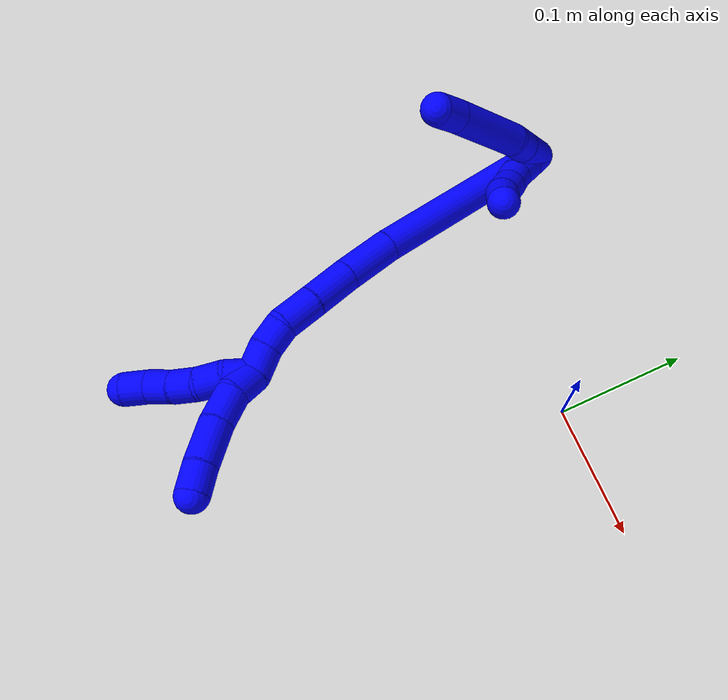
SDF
<sdf version="1.7">
 <world name="default">
  <model name="photoneo_s_sensor">
   <static>1</static>
   <pose>0 0 2 1.57079 1.57079 3.14159</pose>
   <link name="link">
    <inertial><mass>0.1</mass></inertial>
    <sensor name="sensor" type="depth">
     <update_rate>30</update_rate>
     <camera>
      <horizontal_fov>1.22</horizontal_fov>
      <image><width>1920</width><height>1200</height><format>B8G8R8</format></image>
      <clip><near>0.1</near><far>4</far></clip>
      <depth_camera><output>points</output></depth_camera>
     </camera>
     <plugin name="camera_plugin" filename="libgazebo_ros_depth_camera.so">
      <baseline>0.2</baseline>
      <alwaysOn>1</alwaysOn>
      <updateRate>0.0</updateRate>
      <cameraName>camera_ir</cameraName>
      <imageTopicName>/camera/color/image_raw</imageTopicName>
      <cameraInfoTopicName>/camera/color/camera_info</cameraInfoTopicName>
      <depthImageTopicName>/camera/depth/image_raw</depthImageTopicName>
      <depthImageCameraInfoTopicName>/camera/depth/camera_info</depthImageCameraInfoTopicName>
      <pointCloudTopicName>/camera/depth/points</pointCloudTopicName>
      <frameName>fr_optical</frameName>
      <pointCloudCutoff>0.1</pointCloudCutoff>
      <pointCloudCutoffMax>2.0</pointCloudCutoffMax>
      <distortionK1>0</distortionK1>
      <distortionK2>0</distortionK2>
      <distortionK3>0</distortionK3>
      <distortionT1>0</distortionT1>
      <distortionT2>0</distortionT2>
      <CxPrime>0</CxPrime>
      <Cx>0</Cx>
      <Cy>0</Cy>
      <focalLength>0</focalLength>
      <hackBaseline>0</hackBaseline>
     </plugin>
    </sensor>
   </link>
  </model>
  <model name="bin">
   <static>1</static>
   <link name="bottom">
    <collision name="collision-bottom">
     <pose>0 0 -0.01 0 -0 0</pose>
     <geometry><box><size>0.8 0.6 0.02</size></box></geometry>
     <surface>
      <friction><ode><mu>100</mu><mu2>100</mu2></ode></friction>
      <contact><collide_bitmask>65535</collide_bitmask></contact>
     </surface>
    </collision>
   </link>
   <link name="west_wall">
    <collision name="collision-west_wall">
     <pose>-0.41 0 0.1 0 -0 0</pose>
     <geometry><box><size>0.02 0.6 0.2</size></box></geometry>
     <surface>
      <friction><ode><mu>100</mu><mu2>100</mu2></ode></friction>
      <contact><collide_bitmask>65535</collide_bitmask></contact>
     </surface>
    </collision>
   </link>
   <link name="east_wall">
    <collision name="collision-east_wall">
     <pose>0.41 0 0.1 0 -0 0</pose>
     <geometry><box><size>0.02 0.6 0.2</size></box></geometry>
     <surface>
      <friction><ode><mu>100</mu><mu2>100</mu2></ode></friction>
      <contact><collide_bitmask>65535</collide_bitmask></contact>
     </surface>
    </collision>
   </link>
   <link name="south_wall">
    <collision name="collision-south_wall">
     <pose>0 -0.31 0.1 0 -0 0</pose>
     <geometry><box><size>0.8 0.02 0.2</size></box></geometry>
     <surface>
      <friction><ode><mu>100</mu><mu2>100</mu2></ode></friction>
      <contact><collide_bitmask>65535</collide_bitmask></contact>
     </surface>
    </collision>
   </link>
   <link name="north_wall">
    <collision name="collision-north_wall">
     <pose>0 0.31 0.1 0 -0 0</pose>
     <geometry><box><size>0.8 0.02 0.2</size></box></geometry>
     <surface>
      <friction><ode><mu>100</mu><mu2>100</mu2></ode></friction>
      <contact><collide_bitmask>65535</collide_bitmask></contact>
     </surface>
    </collision>
   </link>
  </model>
  <model name="1">
   <static>0</static>
   <link name="1">
    <collision name="collision-cylinder-e_1_2_8">
     <pose>0.005212 0.000737 -0.021674 -3.1076 0.235873 -2.85663</pose>
     <geometry><cylinder><radius>0.0125</radius><length>0.044609</length></cylinder></geometry>
     <surface>
      <friction><ode><mu>1.16</mu><mu2>1.16</mu2><slip1>0</slip1><slip2>0</slip2></ode></friction>
      <contact><ode><kp>1e+06</kp><kd>1</kd><max_vel>0</max_vel><min_depth>0.001</min_depth></ode></contact>
     </surface>
    </collision>
    <visual name="visual-cylinder-e_1_2_8">
     <pose>0.005212 0.000737 -0.021674 -3.1076 0.235873 -2.85663</pose>
     <geometry><cylinder><radius>0.0125</radius><length>0.044609</length></cylinder></geometry>
     <material><ambient>0 0 1 1</ambient></material>
    </visual>
    <collision name="collision-cylinder-e_2_8_9">
     <pose>0.013745 0.002618 -0.052989 -3.0235 0.329599 -2.45853</pose>
     <geometry><cylinder><radius>0.0125</radius><length>0.02052</length></cylinder></geometry>
     <surface>
      <friction><ode><mu>1.16</mu><mu2>1.16</mu2><slip1>0</slip1><slip2>0</slip2></ode></friction>
      <contact><ode><kp>1e+06</kp><kd>1</kd><max_vel>0</max_vel><min_depth>0.001</min_depth></ode></contact>
     </surface>
    </collision>
    <visual name="visual-cylinder-e_2_8_9">
     <pose>0.013745 0.002618 -0.052989 -3.0235 0.329599 -2.45853</pose>
     <geometry><cylinder><radius>0.0125</radius><length>0.02052</length></cylinder></geometry>
     <material><ambient>0 0 1 1</ambient></material>
    </visual>
    <collision name="collision-cylinder-e_3_9_10">
     <pose>0.035737 0.009478 -0.088163 -2.92136 0.619756 -2.47662</pose>
     <geometry><cylinder><radius>0.0125</radius><length>0.064289</length></cylinder></geometry>
     <surface>
      <friction><ode><mu>1.16</mu><mu2>1.16</mu2><slip1>0</slip1><slip2>0</slip2></ode></friction>
      <contact><ode><kp>1e+06</kp><kd>1</kd><max_vel>0</max_vel><min_depth>0.001</min_depth></ode></contact>
     </surface>
    </collision>
    <visual name="visual-cylinder-e_3_9_10">
     <pose>0.035737 0.009478 -0.088163 -2.92136 0.619756 -2.47662</pose>
     <geometry><cylinder><radius>0.0125</radius><length>0.064289</length></cylinder></geometry>
     <material><ambient>0 0 1 1</ambient></material>
    </visual>
    <collision name="collision-cylinder-e_4_10_6">
     <pose>0.0602 0.016362 -0.122123 -3.00387 0.597786 -2.70117</pose>
     <geometry><cylinder><radius>0.0125</radius><length>0.020582</length></cylinder></geometry>
     <surface>
      <friction><ode><mu>1.16</mu><mu2>1.16</mu2><slip1>0</slip1><slip2>0</slip2></ode></friction>
      <contact><ode><kp>1e+06</kp><kd>1</kd><max_vel>0</max_vel><min_depth>0.001</min_depth></ode></contact>
     </surface>
    </collision>
    <visual name="visual-cylinder-e_4_10_6">
     <pose>0.0602 0.016362 -0.122123 -3.00387 0.597786 -2.70117</pose>
     <geometry><cylinder><radius>0.0125</radius><length>0.020582</length></cylinder></geometry>
     <material><ambient>0 0 1 1</ambient></material>
    </visual>
    <collision name="collision-cylinder-e_1_2_11">
     <pose>0.004333 -0.004591 -0.007755 2.6071 0.448185 1.38843</pose>
     <geometry><cylinder><radius>0.0125</radius><length>0.02</length></cylinder></geometry>
     <surface>
      <friction><ode><mu>1.16</mu><mu2>1.16</mu2><slip1>0</slip1><slip2>0</slip2></ode></friction>
      <contact><ode><kp>1e+06</kp><kd>1</kd><max_vel>0</max_vel><min_depth>0.001</min_depth></ode></contact>
     </surface>
    </collision>
    <visual name="visual-cylinder-e_1_2_11">
     <pose>0.004333 -0.004591 -0.007755 2.6071 0.448185 1.38843</pose>
     <geometry><cylinder><radius>0.0125</radius><length>0.02</length></cylinder></geometry>
     <material><ambient>0 0 1 1</ambient></material>
    </visual>
    <collision name="collision-cylinder-e_2_11_12">
     <pose>0.013136 -0.013777 -0.023186 2.60211 0.463328 1.41272</pose>
     <geometry><cylinder><radius>0.0125</radius><length>0.02</length></cylinder></geometry>
     <surface>
      <friction><ode><mu>1.16</mu><mu2>1.16</mu2><slip1>0</slip1><slip2>0</slip2></ode></friction>
      <contact><ode><kp>1e+06</kp><kd>1</kd><max_vel>0</max_vel><min_depth>0.001</min_depth></ode></contact>
     </surface>
    </collision>
    <visual name="visual-cylinder-e_2_11_12">
     <pose>0.013136 -0.013777 -0.023186 2.60211 0.463328 1.41272</pose>
     <geometry><cylinder><radius>0.0125</radius><length>0.02</length></cylinder></geometry>
     <material><ambient>0 0 1 1</ambient></material>
    </visual>
    <collision name="collision-cylinder-e_3_12_13">
     <pose>0.01994 -0.023313 -0.039236 2.60868 0.235678 0.818495</pose>
     <geometry><cylinder><radius>0.0125</radius><length>0.02</length></cylinder></geometry>
     <surface>
      <friction><ode><mu>1.16</mu><mu2>1.16</mu2><slip1>0</slip1><slip2>0</slip2></ode></friction>
      <contact><ode><kp>1e+06</kp><kd>1</kd><max_vel>0</max_vel><min_depth>0.001</min_depth></ode></contact>
     </surface>
    </collision>
    <visual name="visual-cylinder-e_3_12_13">
     <pose>0.01994 -0.023313 -0.039236 2.60868 0.235678 0.818495</pose>
     <geometry><cylinder><radius>0.0125</radius><length>0.02</length></cylinder></geometry>
     <material><ambient>0 0 1 1</ambient></material>
    </visual>
    <collision name="collision-cylinder-e_4_13_14">
     <pose>0.024799 -0.032339 -0.056383 2.7056 0.255095 1.04957</pose>
     <geometry><cylinder><radius>0.0125</radius><length>0.02</length></cylinder></geometry>
     <surface>
      <friction><ode><mu>1.16</mu><mu2>1.16</mu2><slip1>0</slip1><slip2>0</slip2></ode></friction>
      <contact><ode><kp>1e+06</kp><kd>1</kd><max_vel>0</max_vel><min_depth>0.001</min_depth></ode></contact>
     </surface>
    </collision>
    <visual name="visual-cylinder-e_4_13_14">
     <pose>0.024799 -0.032339 -0.056383 2.7056 0.255095 1.04957</pose>
     <geometry><cylinder><radius>0.0125</radius><length>0.02</length></cylinder></geometry>
     <material><ambient>0 0 1 1</ambient></material>
    </visual>
    <collision name="collision-cylinder-e_5_14_5">
     <pose>0.026613 -0.040813 -0.074112 2.68615 -0.070971 -0.304018</pose>
     <geometry><cylinder><radius>0.0125</radius><length>0.02</length></cylinder></geometry>
     <surface>
      <friction><ode><mu>1.16</mu><mu2>1.16</mu2><slip1>0</slip1><slip2>0</slip2></ode></friction>
      <contact><ode><kp>1e+06</kp><kd>1</kd><max_vel>0</max_vel><min_depth>0.001</min_depth></ode></contact>
     </surface>
    </collision>
    <visual name="visual-cylinder-e_5_14_5">
     <pose>0.026613 -0.040813 -0.074112 2.68615 -0.070971 -0.304018</pose>
     <geometry><cylinder><radius>0.0125</radius><length>0.02</length></cylinder></geometry>
     <material><ambient>0 0 1 1</ambient></material>
    </visual>
    <collision name="collision-cylinder-e_1_2_15">
     <pose>0.057586 -0.035045 -0.036986 2.38315 0.846446 1.69299</pose>
     <geometry><cylinder><radius>0.0125</radius><length>0.153783</length></cylinder></geometry>
     <surface>
      <friction><ode><mu>1.16</mu><mu2>1.16</mu2><slip1>0</slip1><slip2>0</slip2></ode></friction>
      <contact><ode><kp>1e+06</kp><kd>1</kd><max_vel>0</max_vel><min_depth>0.001</min_depth></ode></contact>
     </surface>
    </collision>
    <visual name="visual-cylinder-e_1_2_15">
     <pose>0.057586 -0.035045 -0.036986 2.38315 0.846446 1.69299</pose>
     <geometry><cylinder><radius>0.0125</radius><length>0.153783</length></cylinder></geometry>
     <material><ambient>0 0 1 1</ambient></material>
    </visual>
    <collision name="collision-cylinder-e_2_15_16">
     <pose>0.129521 -0.080545 -0.084227 2.34649 0.775161 1.54259</pose>
     <geometry><cylinder><radius>0.0125</radius><length>0.041005</length></cylinder></geometry>
     <surface>
      <friction><ode><mu>1.16</mu><mu2>1.16</mu2><slip1>0</slip1><slip2>0</slip2></ode></friction>
      <contact><ode><kp>1e+06</kp><kd>1</kd><max_vel>0</max_vel><min_depth>0.001</min_depth></ode></contact>
     </surface>
    </collision>
    <visual name="visual-cylinder-e_2_15_16">
     <pose>0.129521 -0.080545 -0.084227 2.34649 0.775161 1.54259</pose>
     <geometry><cylinder><radius>0.0125</radius><length>0.041005</length></cylinder></geometry>
     <material><ambient>0 0 1 1</ambient></material>
    </visual>
    <collision name="collision-cylinder-e_3_16_17">
     <pose>0.155215 -0.100175 -0.103266 2.33449 0.729086 1.45866</pose>
     <geometry><cylinder><radius>0.0125</radius><length>0.034063</length></cylinder></geometry>
     <surface>
      <friction><ode><mu>1.16</mu><mu2>1.16</mu2><slip1>0</slip1><slip2>0</slip2></ode></friction>
      <contact><ode><kp>1e+06</kp><kd>1</kd><max_vel>0</max_vel><min_depth>0.001</min_depth></ode></contact>
     </surface>
    </collision>
    <visual name="visual-cylinder-e_3_16_17">
     <pose>0.155215 -0.100175 -0.103266 2.33449 0.729086 1.45866</pose>
     <geometry><cylinder><radius>0.0125</radius><length>0.034063</length></cylinder></geometry>
     <material><ambient>0 0 1 1</ambient></material>
    </visual>
    <collision name="collision-cylinder-e_4_17_18">
     <pose>0.176625 -0.117102 -0.118588 2.27128 0.781593 1.45031</pose>
     <geometry><cylinder><radius>0.0125</radius><length>0.028574</length></cylinder></geometry>
     <surface>
      <friction><ode><mu>1.16</mu><mu2>1.16</mu2><slip1>0</slip1><slip2>0</slip2></ode></friction>
      <contact><ode><kp>1e+06</kp><kd>1</kd><max_vel>0</max_vel><min_depth>0.001</min_depth></ode></contact>
     </surface>
    </collision>
    <visual name="visual-cylinder-e_4_17_18">
     <pose>0.176625 -0.117102 -0.118588 2.27128 0.781593 1.45031</pose>
     <geometry><cylinder><radius>0.0125</radius><length>0.028574</length></cylinder></geometry>
     <material><ambient>0 0 1 1</ambient></material>
    </visual>
    <collision name="collision-cylinder-e_5_18_19">
     <pose>0.192687 -0.132679 -0.12762 1.87955 0.630801 0.83998</pose>
     <geometry><cylinder><radius>0.0125</radius><length>0.020338</length></cylinder></geometry>
     <surface>
      <friction><ode><mu>1.16</mu><mu2>1.16</mu2><slip1>0</slip1><slip2>0</slip2></ode></friction>
      <contact><ode><kp>1e+06</kp><kd>1</kd><max_vel>0</max_vel><min_depth>0.001</min_depth></ode></contact>
     </surface>
    </collision>
    <visual name="visual-cylinder-e_5_18_19">
     <pose>0.192687 -0.132679 -0.12762 1.87955 0.630801 0.83998</pose>
     <geometry><cylinder><radius>0.0125</radius><length>0.020338</length></cylinder></geometry>
     <material><ambient>0 0 1 1</ambient></material>
    </visual>
    <collision name="collision-cylinder-e_6_19_1">
     <pose>0.202695 -0.150089 -0.134069 1.96193 0.368986 0.543821</pose>
     <geometry><cylinder><radius>0.0125</radius><length>0.022237</length></cylinder></geometry>
     <surface>
      <friction><ode><mu>1.16</mu><mu2>1.16</mu2><slip1>0</slip1><slip2>0</slip2></ode></friction>
      <contact><ode><kp>1e+06</kp><kd>1</kd><max_vel>0</max_vel><min_depth>0.001</min_depth></ode></contact>
     </surface>
    </collision>
    <visual name="visual-cylinder-e_6_19_1">
     <pose>0.202695 -0.150089 -0.134069 1.96193 0.368986 0.543821</pose>
     <geometry><cylinder><radius>0.0125</radius><length>0.022237</length></cylinder></geometry>
     <material><ambient>0 0 1 1</ambient></material>
    </visual>
    <collision name="collision-cylinder-e_1_1_20">
     <pose>0.212538 -0.165193 -0.144807 2.45887 0.588301 1.41212</pose>
     <geometry><cylinder><radius>0.0125</radius><length>0.021023</length></cylinder></geometry>
     <surface>
      <friction><ode><mu>1.16</mu><mu2>1.16</mu2><slip1>0</slip1><slip2>0</slip2></ode></friction>
      <contact><ode><kp>1e+06</kp><kd>1</kd><max_vel>0</max_vel><min_depth>0.001</min_depth></ode></contact>
     </surface>
    </collision>
    <visual name="visual-cylinder-e_1_1_20">
     <pose>0.212538 -0.165193 -0.144807 2.45887 0.588301 1.41212</pose>
     <geometry><cylinder><radius>0.0125</radius><length>0.021023</length></cylinder></geometry>
     <material><ambient>0 0 1 1</ambient></material>
    </visual>
    <collision name="collision-cylinder-e_2_20_21">
     <pose>0.222722 -0.180468 -0.158717 2.20154 0.345593 0.661885</pose>
     <geometry><cylinder><radius>0.0125</radius><length>0.025684</length></cylinder></geometry>
     <surface>
      <friction><ode><mu>1.16</mu><mu2>1.16</mu2><slip1>0</slip1><slip2>0</slip2></ode></friction>
      <contact><ode><kp>1e+06</kp><kd>1</kd><max_vel>0</max_vel><min_depth>0.001</min_depth></ode></contact>
     </surface>
    </collision>
    <visual name="visual-cylinder-e_2_20_21">
     <pose>0.222722 -0.180468 -0.158717 2.20154 0.345593 0.661885</pose>
     <geometry><cylinder><radius>0.0125</radius><length>0.025684</length></cylinder></geometry>
     <material><ambient>0 0 1 1</ambient></material>
    </visual>
    <collision name="collision-cylinder-e_3_21_22">
     <pose>0.230812 -0.203466 -0.174325 2.14064 0.233539 0.422556</pose>
     <geometry><cylinder><radius>0.0125</radius><length>0.032326</length></cylinder></geometry>
     <surface>
      <friction><ode><mu>1.16</mu><mu2>1.16</mu2><slip1>0</slip1><slip2>0</slip2></ode></friction>
      <contact><ode><kp>1e+06</kp><kd>1</kd><max_vel>0</max_vel><min_depth>0.001</min_depth></ode></contact>
     </surface>
    </collision>
    <visual name="visual-cylinder-e_3_21_22">
     <pose>0.230812 -0.203466 -0.174325 2.14064 0.233539 0.422556</pose>
     <geometry><cylinder><radius>0.0125</radius><length>0.032326</length></cylinder></geometry>
     <material><ambient>0 0 1 1</ambient></material>
    </visual>
    <collision name="collision-cylinder-e_4_22_4">
     <pose>0.236466 -0.225818 -0.187626 2.05708 0.183481 0.303049</pose>
     <geometry><cylinder><radius>0.0125</radius><length>0.020967</length></cylinder></geometry>
     <surface>
      <friction><ode><mu>1.16</mu><mu2>1.16</mu2><slip1>0</slip1><slip2>0</slip2></ode></friction>
      <contact><ode><kp>1e+06</kp><kd>1</kd><max_vel>0</max_vel><min_depth>0.001</min_depth></ode></contact>
     </surface>
    </collision>
    <visual name="visual-cylinder-e_4_22_4">
     <pose>0.236466 -0.225818 -0.187626 2.05708 0.183481 0.303049</pose>
     <geometry><cylinder><radius>0.0125</radius><length>0.020967</length></cylinder></geometry>
     <material><ambient>0 0 1 1</ambient></material>
    </visual>
    <collision name="collision-cylinder-e_1_1_23">
     <pose>0.216648 -0.159526 -0.139074 -2.99963 1.46433 -2.98372</pose>
     <geometry><cylinder><radius>0.0125</radius><length>0.02</length></cylinder></geometry>
     <surface>
      <friction><ode><mu>1.16</mu><mu2>1.16</mu2><slip1>0</slip1><slip2>0</slip2></ode></friction>
      <contact><ode><kp>1e+06</kp><kd>1</kd><max_vel>0</max_vel><min_depth>0.001</min_depth></ode></contact>
     </surface>
    </collision>
    <visual name="visual-cylinder-e_1_1_23">
     <pose>0.216648 -0.159526 -0.139074 -2.99963 1.46433 -2.98372</pose>
     <geometry><cylinder><radius>0.0125</radius><length>0.02</length></cylinder></geometry>
     <material><ambient>0 0 1 1</ambient></material>
    </visual>
    <collision name="collision-cylinder-e_2_23_24">
     <pose>0.236384 -0.161372 -0.139769 1.39386 1.36662 1.19638</pose>
     <geometry><cylinder><radius>0.0125</radius><length>0.02</length></cylinder></geometry>
     <surface>
      <friction><ode><mu>1.16</mu><mu2>1.16</mu2><slip1>0</slip1><slip2>0</slip2></ode></friction>
      <contact><ode><kp>1e+06</kp><kd>1</kd><max_vel>0</max_vel><min_depth>0.001</min_depth></ode></contact>
     </surface>
    </collision>
    <visual name="visual-cylinder-e_2_23_24">
     <pose>0.236384 -0.161372 -0.139769 1.39386 1.36662 1.19638</pose>
     <geometry><cylinder><radius>0.0125</radius><length>0.02</length></cylinder></geometry>
     <material><ambient>0 0 1 1</ambient></material>
    </visual>
    <collision name="collision-cylinder-e_3_24_25">
     <pose>0.255907 -0.163929 -0.137175 0.245801 1.33807 0.194718</pose>
     <geometry><cylinder><radius>0.0125</radius><length>0.02</length></cylinder></geometry>
     <surface>
      <friction><ode><mu>1.16</mu><mu2>1.16</mu2><slip1>0</slip1><slip2>0</slip2></ode></friction>
      <contact><ode><kp>1e+06</kp><kd>1</kd><max_vel>0</max_vel><min_depth>0.001</min_depth></ode></contact>
     </surface>
    </collision>
    <visual name="visual-cylinder-e_3_24_25">
     <pose>0.255907 -0.163929 -0.137175 0.245801 1.33807 0.194718</pose>
     <geometry><cylinder><radius>0.0125</radius><length>0.02</length></cylinder></geometry>
     <material><ambient>0 0 1 1</ambient></material>
    </visual>
    <collision name="collision-cylinder-e_4_25_26">
     <pose>0.275271 -0.163933 -0.132318 -0.209442 1.29958 -0.159396</pose>
     <geometry><cylinder><radius>0.0125</radius><length>0.02</length></cylinder></geometry>
     <surface>
      <friction><ode><mu>1.16</mu><mu2>1.16</mu2><slip1>0</slip1><slip2>0</slip2></ode></friction>
      <contact><ode><kp>1e+06</kp><kd>1</kd><max_vel>0</max_vel><min_depth>0.001</min_depth></ode></contact>
     </surface>
    </collision>
    <visual name="visual-cylinder-e_4_25_26">
     <pose>0.275271 -0.163933 -0.132318 -0.209442 1.29958 -0.159396</pose>
     <geometry><cylinder><radius>0.0125</radius><length>0.02</length></cylinder></geometry>
     <material><ambient>0 0 1 1</ambient></material>
    </visual>
    <collision name="collision-cylinder-e_5_26_3">
     <pose>0.294864 -0.163828 -0.128899 0.51508 1.47898 0.471566</pose>
     <geometry><cylinder><radius>0.0125</radius><length>0.02</length></cylinder></geometry>
     <surface>
      <friction><ode><mu>1.16</mu><mu2>1.16</mu2><slip1>0</slip1><slip2>0</slip2></ode></friction>
      <contact><ode><kp>1e+06</kp><kd>1</kd><max_vel>0</max_vel><min_depth>0.001</min_depth></ode></contact>
     </surface>
    </collision>
    <visual name="visual-cylinder-e_5_26_3">
     <pose>0.294864 -0.163828 -0.128899 0.51508 1.47898 0.471566</pose>
     <geometry><cylinder><radius>0.0125</radius><length>0.02</length></cylinder></geometry>
     <material><ambient>0 0 1 1</ambient></material>
    </visual>
    <collision name="collision-sphere-3">
     <pose>0.304822 -0.164279 -0.128102 0 -0 0</pose>
     <geometry><sphere><radius>0.0125</radius></sphere></geometry>
     <surface>
      <friction><ode><mu>1.16</mu><mu2>1.16</mu2><slip1>0</slip1><slip2>0</slip2></ode></friction>
      <contact><ode><kp>1e+06</kp><kd>1</kd><max_vel>0</max_vel><min_depth>0.001</min_depth></ode></contact>
     </surface>
    </collision>
    <visual name="visual-sphere-3">
     <pose>0.304822 -0.164279 -0.128102 0 -0 0</pose>
     <geometry><sphere><radius>0.0125</radius></sphere></geometry>
     <material><ambient>0 0 1 1</ambient></material>
    </visual>
    <collision name="collision-sphere-26">
     <pose>0.284906 -0.163376 -0.129697 0 -0 0</pose>
     <geometry><sphere><radius>0.0125</radius></sphere></geometry>
     <surface>
      <friction><ode><mu>1.16</mu><mu2>1.16</mu2><slip1>0</slip1><slip2>0</slip2></ode></friction>
      <contact><ode><kp>1e+06</kp><kd>1</kd><max_vel>0</max_vel><min_depth>0.001</min_depth></ode></contact>
     </surface>
    </collision>
    <visual name="visual-sphere-26">
     <pose>0.284906 -0.163376 -0.129697 0 -0 0</pose>
     <geometry><sphere><radius>0.0125</radius></sphere></geometry>
     <material><ambient>0 0 1 1</ambient></material>
    </visual>
    <collision name="collision-sphere-25">
     <pose>0.265637 -0.16449 -0.134938 0 -0 0</pose>
     <geometry><sphere><radius>0.0125</radius></sphere></geometry>
     <surface>
      <friction><ode><mu>1.16</mu><mu2>1.16</mu2><slip1>0</slip1><slip2>0</slip2></ode></friction>
      <contact><ode><kp>1e+06</kp><kd>1</kd><max_vel>0</max_vel><min_depth>0.001</min_depth></ode></contact>
     </surface>
    </collision>
    <visual name="visual-sphere-25">
     <pose>0.265637 -0.16449 -0.134938 0 -0 0</pose>
     <geometry><sphere><radius>0.0125</radius></sphere></geometry>
     <material><ambient>0 0 1 1</ambient></material>
    </visual>
    <collision name="collision-sphere-24">
     <pose>0.246176 -0.163368 -0.139412 0 -0 0</pose>
     <geometry><sphere><radius>0.0125</radius></sphere></geometry>
     <surface>
      <friction><ode><mu>1.16</mu><mu2>1.16</mu2><slip1>0</slip1><slip2>0</slip2></ode></friction>
      <contact><ode><kp>1e+06</kp><kd>1</kd><max_vel>0</max_vel><min_depth>0.001</min_depth></ode></contact>
     </surface>
    </collision>
    <visual name="visual-sphere-24">
     <pose>0.246176 -0.163368 -0.139412 0 -0 0</pose>
     <geometry><sphere><radius>0.0125</radius></sphere></geometry>
     <material><ambient>0 0 1 1</ambient></material>
    </visual>
    <collision name="collision-sphere-23">
     <pose>0.226592 -0.159376 -0.140126 0 -0 0</pose>
     <geometry><sphere><radius>0.0125</radius></sphere></geometry>
     <surface>
      <friction><ode><mu>1.16</mu><mu2>1.16</mu2><slip1>0</slip1><slip2>0</slip2></ode></friction>
      <contact><ode><kp>1e+06</kp><kd>1</kd><max_vel>0</max_vel><min_depth>0.001</min_depth></ode></contact>
     </surface>
    </collision>
    <visual name="visual-sphere-23">
     <pose>0.226592 -0.159376 -0.140126 0 -0 0</pose>
     <geometry><sphere><radius>0.0125</radius></sphere></geometry>
     <material><ambient>0 0 1 1</ambient></material>
    </visual>
    <collision name="collision-sphere-4">
     <pose>0.238378 -0.23493 -0.192443 0 -0 0</pose>
     <geometry><sphere><radius>0.0125</radius></sphere></geometry>
     <surface>
      <friction><ode><mu>1.16</mu><mu2>1.16</mu2><slip1>0</slip1><slip2>0</slip2></ode></friction>
      <contact><ode><kp>1e+06</kp><kd>1</kd><max_vel>0</max_vel><min_depth>0.001</min_depth></ode></contact>
     </surface>
    </collision>
    <visual name="visual-sphere-4">
     <pose>0.238378 -0.23493 -0.192443 0 -0 0</pose>
     <geometry><sphere><radius>0.0125</radius></sphere></geometry>
     <material><ambient>0 0 1 1</ambient></material>
    </visual>
    <collision name="collision-sphere-22">
     <pose>0.234553 -0.216705 -0.182809 0 -0 0</pose>
     <geometry><sphere><radius>0.0125</radius></sphere></geometry>
     <surface>
      <friction><ode><mu>1.16</mu><mu2>1.16</mu2><slip1>0</slip1><slip2>0</slip2></ode></friction>
      <contact><ode><kp>1e+06</kp><kd>1</kd><max_vel>0</max_vel><min_depth>0.001</min_depth></ode></contact>
     </surface>
    </collision>
    <visual name="visual-sphere-22">
     <pose>0.234553 -0.216705 -0.182809 0 -0 0</pose>
     <geometry><sphere><radius>0.0125</radius></sphere></geometry>
     <material><ambient>0 0 1 1</ambient></material>
    </visual>
    <collision name="collision-sphere-21">
     <pose>0.227072 -0.190226 -0.165842 0 -0 0</pose>
     <geometry><sphere><radius>0.0125</radius></sphere></geometry>
     <surface>
      <friction><ode><mu>1.16</mu><mu2>1.16</mu2><slip1>0</slip1><slip2>0</slip2></ode></friction>
      <contact><ode><kp>1e+06</kp><kd>1</kd><max_vel>0</max_vel><min_depth>0.001</min_depth></ode></contact>
     </surface>
    </collision>
    <visual name="visual-sphere-21">
     <pose>0.227072 -0.190226 -0.165842 0 -0 0</pose>
     <geometry><sphere><radius>0.0125</radius></sphere></geometry>
     <material><ambient>0 0 1 1</ambient></material>
    </visual>
    <collision name="collision-sphere-20">
     <pose>0.218371 -0.17071 -0.151591 0 -0 0</pose>
     <geometry><sphere><radius>0.0125</radius></sphere></geometry>
     <surface>
      <friction><ode><mu>1.16</mu><mu2>1.16</mu2><slip1>0</slip1><slip2>0</slip2></ode></friction>
      <contact><ode><kp>1e+06</kp><kd>1</kd><max_vel>0</max_vel><min_depth>0.001</min_depth></ode></contact>
     </surface>
    </collision>
    <visual name="visual-sphere-20">
     <pose>0.218371 -0.17071 -0.151591 0 -0 0</pose>
     <geometry><sphere><radius>0.0125</radius></sphere></geometry>
     <material><ambient>0 0 1 1</ambient></material>
    </visual>
    <collision name="collision-sphere-11">
     <pose>0.008667 -0.009182 -0.015511 0 -0 0</pose>
     <geometry><sphere><radius>0.0125</radius></sphere></geometry>
     <surface>
      <friction><ode><mu>1.16</mu><mu2>1.16</mu2><slip1>0</slip1><slip2>0</slip2></ode></friction>
      <contact><ode><kp>1e+06</kp><kd>1</kd><max_vel>0</max_vel><min_depth>0.001</min_depth></ode></contact>
     </surface>
    </collision>
    <visual name="visual-sphere-11">
     <pose>0.008667 -0.009182 -0.015511 0 -0 0</pose>
     <geometry><sphere><radius>0.0125</radius></sphere></geometry>
     <material><ambient>0 0 1 1</ambient></material>
    </visual>
    <collision name="collision-sphere-6">
     <pose>0.065992 0.01753 -0.130549 0 -0 0</pose>
     <geometry><sphere><radius>0.0125</radius></sphere></geometry>
     <surface>
      <friction><ode><mu>1.16</mu><mu2>1.16</mu2><slip1>0</slip1><slip2>0</slip2></ode></friction>
      <contact><ode><kp>1e+06</kp><kd>1</kd><max_vel>0</max_vel><min_depth>0.001</min_depth></ode></contact>
     </surface>
    </collision>
    <visual name="visual-sphere-6">
     <pose>0.065992 0.01753 -0.130549 0 -0 0</pose>
     <geometry><sphere><radius>0.0125</radius></sphere></geometry>
     <material><ambient>0 0 1 1</ambient></material>
    </visual>
    <collision name="collision-sphere-10">
     <pose>0.054408 0.015194 -0.113697 0 -0 0</pose>
     <geometry><sphere><radius>0.0125</radius></sphere></geometry>
     <surface>
      <friction><ode><mu>1.16</mu><mu2>1.16</mu2><slip1>0</slip1><slip2>0</slip2></ode></friction>
      <contact><ode><kp>1e+06</kp><kd>1</kd><max_vel>0</max_vel><min_depth>0.001</min_depth></ode></contact>
     </surface>
    </collision>
    <visual name="visual-sphere-10">
     <pose>0.054408 0.015194 -0.113697 0 -0 0</pose>
     <geometry><sphere><radius>0.0125</radius></sphere></geometry>
     <material><ambient>0 0 1 1</ambient></material>
    </visual>
    <collision name="collision-sphere-9">
     <pose>0.017066 0.003762 -0.062629 0 -0 0</pose>
     <geometry><sphere><radius>0.0125</radius></sphere></geometry>
     <surface>
      <friction><ode><mu>1.16</mu><mu2>1.16</mu2><slip1>0</slip1><slip2>0</slip2></ode></friction>
      <contact><ode><kp>1e+06</kp><kd>1</kd><max_vel>0</max_vel><min_depth>0.001</min_depth></ode></contact>
     </surface>
    </collision>
    <visual name="visual-sphere-9">
     <pose>0.017066 0.003762 -0.062629 0 -0 0</pose>
     <geometry><sphere><radius>0.0125</radius></sphere></geometry>
     <material><ambient>0 0 1 1</ambient></material>
    </visual>
    <collision name="collision-sphere-2">
     <geometry><sphere><radius>0.0125</radius></sphere></geometry>
     <surface>
      <friction><ode><mu>1.16</mu><mu2>1.16</mu2><slip1>0</slip1><slip2>0</slip2></ode></friction>
      <contact><ode><kp>1e+06</kp><kd>1</kd><max_vel>0</max_vel><min_depth>0.001</min_depth></ode></contact>
     </surface>
    </collision>
    <visual name="visual-sphere-2">
     <geometry><sphere><radius>0.0125</radius></sphere></geometry>
     <material><ambient>0 0 1 1</ambient></material>
    </visual>
    <collision name="collision-sphere-19">
     <pose>0.198685 -0.140502 -0.130115 0 -0 0</pose>
     <geometry><sphere><radius>0.0125</radius></sphere></geometry>
     <surface>
      <friction><ode><mu>1.16</mu><mu2>1.16</mu2><slip1>0</slip1><slip2>0</slip2></ode></friction>
      <contact><ode><kp>1e+06</kp><kd>1</kd><max_vel>0</max_vel><min_depth>0.001</min_depth></ode></contact>
     </surface>
    </collision>
    <visual name="visual-sphere-19">
     <pose>0.198685 -0.140502 -0.130115 0 -0 0</pose>
     <geometry><sphere><radius>0.0125</radius></sphere></geometry>
     <material><ambient>0 0 1 1</ambient></material>
    </visual>
    <collision name="collision-sphere-8">
     <pose>0.010425 0.001474 -0.043349 0 -0 0</pose>
     <geometry><sphere><radius>0.0125</radius></sphere></geometry>
     <surface>
      <friction><ode><mu>1.16</mu><mu2>1.16</mu2><slip1>0</slip1><slip2>0</slip2></ode></friction>
      <contact><ode><kp>1e+06</kp><kd>1</kd><max_vel>0</max_vel><min_depth>0.001</min_depth></ode></contact>
     </surface>
    </collision>
    <visual name="visual-sphere-8">
     <pose>0.010425 0.001474 -0.043349 0 -0 0</pose>
     <geometry><sphere><radius>0.0125</radius></sphere></geometry>
     <material><ambient>0 0 1 1</ambient></material>
    </visual>
    <collision name="collision-sphere-12">
     <pose>0.017605 -0.018373 -0.030861 0 -0 0</pose>
     <geometry><sphere><radius>0.0125</radius></sphere></geometry>
     <surface>
      <friction><ode><mu>1.16</mu><mu2>1.16</mu2><slip1>0</slip1><slip2>0</slip2></ode></friction>
      <contact><ode><kp>1e+06</kp><kd>1</kd><max_vel>0</max_vel><min_depth>0.001</min_depth></ode></contact>
     </surface>
    </collision>
    <visual name="visual-sphere-12">
     <pose>0.017605 -0.018373 -0.030861 0 -0 0</pose>
     <geometry><sphere><radius>0.0125</radius></sphere></geometry>
     <material><ambient>0 0 1 1</ambient></material>
    </visual>
    <collision name="collision-sphere-13">
     <pose>0.022275 -0.028253 -0.047611 0 -0 0</pose>
     <geometry><sphere><radius>0.0125</radius></sphere></geometry>
     <surface>
      <friction><ode><mu>1.16</mu><mu2>1.16</mu2><slip1>0</slip1><slip2>0</slip2></ode></friction>
      <contact><ode><kp>1e+06</kp><kd>1</kd><max_vel>0</max_vel><min_depth>0.001</min_depth></ode></contact>
     </surface>
    </collision>
    <visual name="visual-sphere-13">
     <pose>0.022275 -0.028253 -0.047611 0 -0 0</pose>
     <geometry><sphere><radius>0.0125</radius></sphere></geometry>
     <material><ambient>0 0 1 1</ambient></material>
    </visual>
    <collision name="collision-sphere-14">
     <pose>0.027322 -0.036426 -0.065154 0 -0 0</pose>
     <geometry><sphere><radius>0.0125</radius></sphere></geometry>
     <surface>
      <friction><ode><mu>1.16</mu><mu2>1.16</mu2><slip1>0</slip1><slip2>0</slip2></ode></friction>
      <contact><ode><kp>1e+06</kp><kd>1</kd><max_vel>0</max_vel><min_depth>0.001</min_depth></ode></contact>
     </surface>
    </collision>
    <visual name="visual-sphere-14">
     <pose>0.027322 -0.036426 -0.065154 0 -0 0</pose>
     <geometry><sphere><radius>0.0125</radius></sphere></geometry>
     <material><ambient>0 0 1 1</ambient></material>
    </visual>
    <collision name="collision-sphere-5">
     <pose>0.025904 -0.045201 -0.08307 0 -0 0</pose>
     <geometry><sphere><radius>0.0125</radius></sphere></geometry>
     <surface>
      <friction><ode><mu>1.16</mu><mu2>1.16</mu2><slip1>0</slip1><slip2>0</slip2></ode></friction>
      <contact><ode><kp>1e+06</kp><kd>1</kd><max_vel>0</max_vel><min_depth>0.001</min_depth></ode></contact>
     </surface>
    </collision>
    <visual name="visual-sphere-5">
     <pose>0.025904 -0.045201 -0.08307 0 -0 0</pose>
     <geometry><sphere><radius>0.0125</radius></sphere></geometry>
     <material><ambient>0 0 1 1</ambient></material>
    </visual>
    <collision name="collision-sphere-15">
     <pose>0.115173 -0.070089 -0.073973 0 -0 0</pose>
     <geometry><sphere><radius>0.0125</radius></sphere></geometry>
     <surface>
      <friction><ode><mu>1.16</mu><mu2>1.16</mu2><slip1>0</slip1><slip2>0</slip2></ode></friction>
      <contact><ode><kp>1e+06</kp><kd>1</kd><max_vel>0</max_vel><min_depth>0.001</min_depth></ode></contact>
     </surface>
    </collision>
    <visual name="visual-sphere-15">
     <pose>0.115173 -0.070089 -0.073973 0 -0 0</pose>
     <geometry><sphere><radius>0.0125</radius></sphere></geometry>
     <material><ambient>0 0 1 1</ambient></material>
    </visual>
    <collision name="collision-sphere-16">
     <pose>0.143869 -0.091 -0.094482 0 -0 0</pose>
     <geometry><sphere><radius>0.0125</radius></sphere></geometry>
     <surface>
      <friction><ode><mu>1.16</mu><mu2>1.16</mu2><slip1>0</slip1><slip2>0</slip2></ode></friction>
      <contact><ode><kp>1e+06</kp><kd>1</kd><max_vel>0</max_vel><min_depth>0.001</min_depth></ode></contact>
     </surface>
    </collision>
    <visual name="visual-sphere-16">
     <pose>0.143869 -0.091 -0.094482 0 -0 0</pose>
     <geometry><sphere><radius>0.0125</radius></sphere></geometry>
     <material><ambient>0 0 1 1</ambient></material>
    </visual>
    <collision name="collision-sphere-17">
     <pose>0.166561 -0.109349 -0.112051 0 -0 0</pose>
     <geometry><sphere><radius>0.0125</radius></sphere></geometry>
     <surface>
      <friction><ode><mu>1.16</mu><mu2>1.16</mu2><slip1>0</slip1><slip2>0</slip2></ode></friction>
      <contact><ode><kp>1e+06</kp><kd>1</kd><max_vel>0</max_vel><min_depth>0.001</min_depth></ode></contact>
     </surface>
    </collision>
    <visual name="visual-sphere-17">
     <pose>0.166561 -0.109349 -0.112051 0 -0 0</pose>
     <geometry><sphere><radius>0.0125</radius></sphere></geometry>
     <material><ambient>0 0 1 1</ambient></material>
    </visual>
    <collision name="collision-sphere-18">
     <pose>0.186689 -0.124855 -0.125124 0 -0 0</pose>
     <geometry><sphere><radius>0.0125</radius></sphere></geometry>
     <surface>
      <friction><ode><mu>1.16</mu><mu2>1.16</mu2><slip1>0</slip1><slip2>0</slip2></ode></friction>
      <contact><ode><kp>1e+06</kp><kd>1</kd><max_vel>0</max_vel><min_depth>0.001</min_depth></ode></contact>
     </surface>
    </collision>
    <visual name="visual-sphere-18">
     <pose>0.186689 -0.124855 -0.125124 0 -0 0</pose>
     <geometry><sphere><radius>0.0125</radius></sphere></geometry>
     <material><ambient>0 0 1 1</ambient></material>
    </visual>
    <collision name="collision-sphere-1">
     <pose>0.206705 -0.159676 -0.138022 0 -0 0</pose>
     <geometry><sphere><radius>0.0125</radius></sphere></geometry>
     <surface>
      <friction><ode><mu>1.16</mu><mu2>1.16</mu2><slip1>0</slip1><slip2>0</slip2></ode></friction>
      <contact><ode><kp>1e+06</kp><kd>1</kd><max_vel>0</max_vel><min_depth>0.001</min_depth></ode></contact>
     </surface>
    </collision>
    <visual name="visual-sphere-1">
     <pose>0.206705 -0.159676 -0.138022 0 -0 0</pose>
     <geometry><sphere><radius>0.0125</radius></sphere></geometry>
     <material><ambient>0 0 1 1</ambient></material>
    </visual>
    <inertial>
     <pose>0.115925 -0.077896 -0.088144 0 -0 0</pose>
     <mass>0.75</mass>
     <inertia>
      <ixx>0.000205</ixx>
      <ixy>0</ixy>
      <ixz>0</ixz>
      <iyy>0.000415</iyy>
      <iyz>0</iyz>
      <izz>-0.000147</izz>
     </inertia>
    </inertial>
   </link>
   <pose>-0.194045 0.075015 0.011494 2.8632 0.13373 -1.97773</pose>
  </model>
 </world>
</sdf>
